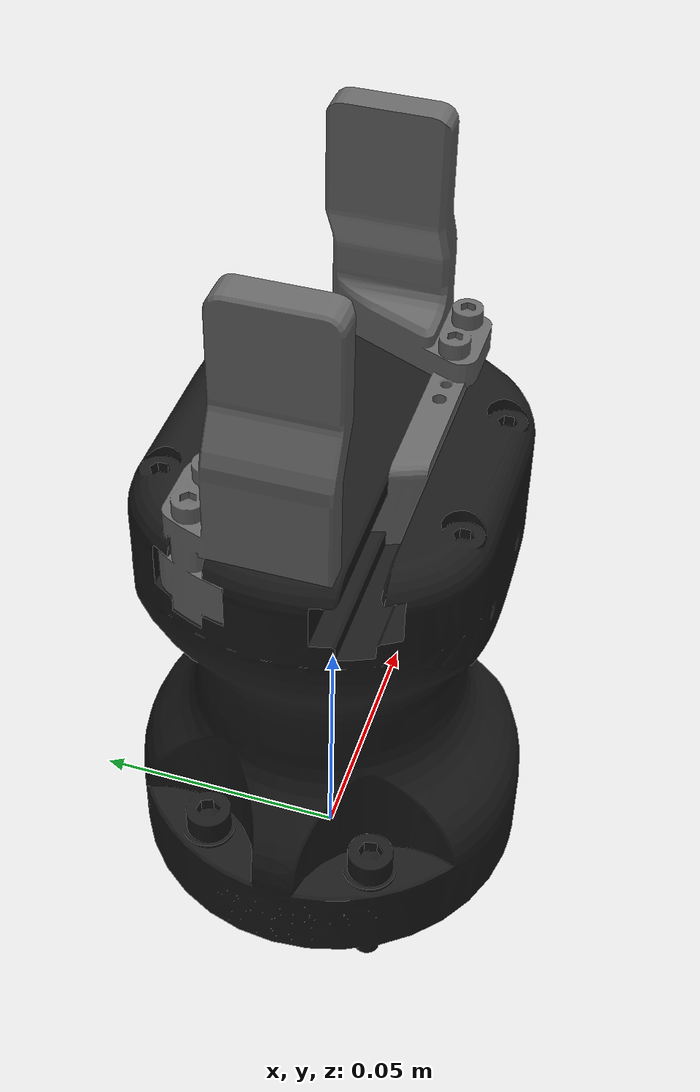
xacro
<?xml version="1.0"?>
<robot xmlns:xacro="http://ros.org/wiki/xacro"
       name="robotiq_hande_gripper" >

  <gazebo>
    <plugin name="gazebo_ros_control" filename="libgazebo_ros_control.so">
    </plugin>

  </gazebo>

  <!-- robotiq_hande_gripper -->
  <xacro:include filename="$(find robotiq_description)/urdf/robotiq_hande_gripper.urdf.xacro" />

  <link name="gripper_root_link">
    <visual>
      <origin xyz="0 0 0.005" rpy="0 0 0"/>
      <geometry>
        <box size="0.01 0.01 0.01"/>
      </geometry>
    </visual>
    <collision>
      <origin xyz="0 0 0.005" rpy="0 0 0"/>
      <geometry>
        <box size="0.01 0.01 0.01"/>
      </geometry>
    </collision>
    <inertial>
      <mass value="0.01" />
      <origin xyz="0.0 0.0 0.0" />
      <inertia ixx = "0.000001" ixy = "0.000000" ixz = "0.000000"
           iyx = "0.000000" iyy = "0.000001" iyz = "0.000000"
           izx = "0.000000" izy = "0.000000" izz = "0.000001" />
    </inertial>
  </link>

  <link name="world" />

  <joint name="world_joint" type="fixed">
    <parent link="world" />
    <child link = "gripper_root_link" />
    <origin xyz="0.0 0.0 0.0" rpy="0.0 0.0 0.0" />
  </joint>

  <!-- gripper -->
  <xacro:robotiq_hande_gripper prefix="" parent="gripper_root_link" >
    <origin xyz="0.0 0 0.005" rpy="0 0 0"/>
  </xacro:robotiq_hande_gripper>

</robot>

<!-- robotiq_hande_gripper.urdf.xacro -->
<robot xmlns:xacro="http://ros.org/wiki/xacro">

  <!--
  Author: Cristian Beltran
-->

  <xacro:include filename="$(find robotiq_description)/urdf/robotiq_hande_gripper.transmission.xacro" />

  <xacro:macro name="robotiq_hande_gripper" params="prefix parent *origin">

    <joint name="${prefix}robotiq_hande_base_joint" type="fixed">
      <parent link="${parent}"/>
      <child link="${prefix}hand_e_link"/>
      <xacro:insert_block name="origin"/>
    </joint>

    <link name="${prefix}hand_e_link">
      <inertial>
        <origin rpy="0 0 0" xyz="0 0 0.04607"/>
        <mass value="0.86387"/>
        <inertia ixx="1017560E-9" ixy="0" ixz="2235E-9" iyy="1028041E-9" iyz="0" izz="489810E-9"/>
      </inertial>
      <visual>
        <origin rpy="0 0 0" xyz="0 0 0"/>
        <geometry>
          <mesh filename="package://robotiq_description/meshes/hande/hand-e.dae" scale="1.0 1.0 1.0"/>
        </geometry>
        <material name="Dark">
          <color rgba=".1 0.1 0.1 1.0"/>
        </material>
      </visual>
      <collision>
        <origin rpy="0 0 0" xyz="0 0 0"/>
        <geometry>
          <mesh filename="package://robotiq_description/meshes/hande/hand-e-collision.dae" scale="1.0 1.0 1.0"/>
        </geometry>
      </collision>
    </link>
    <link name="${prefix}hande_left_finger">
      <inertial>
        <origin rpy="0 0 0" xyz="0.02262 -0.00759 0.00738"/>
        <mass value="0.03804"/>
        <inertia ixx="13567E-9" ixy="1849E-9" ixz="3622E-9" iyy="15784E-9" iyz="3616E-9" izz="7478E-9"/>
      </inertial>
      <visual>
        <origin rpy="0 0 0" xyz="0 0 0"/>
        <geometry>
          <mesh filename="package://robotiq_description/meshes/hande/finger_1.dae" scale="1.0 1.0 1.0"/>
        </geometry>
        <material name="DarkGray">
          <color rgba=".4 0.4 0.4 1.0"/>
        </material>
      </visual>
      <collision>
        <origin rpy="0 0 0" xyz="0 0 0"/>
        <geometry>
          <mesh filename="package://robotiq_description/meshes/hande/finger_1-collision.dae" scale="1.0 1.0 1.0"/>
        </geometry>
      </collision>
    </link>
    <link name="${prefix}hande_right_finger">
      <inertial>
        <origin rpy="0 0 0" xyz="-0.02262 0.00759 0.00738"/>
        <mass value="0.03804"/>
        <inertia ixx="13567E-9" ixy="1849E-9" ixz="-3622E-9" iyy="15784E-9" iyz="-3616E-9" izz="7478E-9"/>
      </inertial>
      <visual>
        <origin rpy="0 0 0" xyz="0 0 0"/>
        <geometry>
          <mesh filename="package://robotiq_description/meshes/hande/finger_2.dae" scale="1.0 1.0 1.0"/>
        </geometry>
        <material name="DarkGray">
          <color rgba=".4 0.4 0.4 1.0"/>
        </material>
      </visual>
      <collision>
        <origin rpy="0 0 0" xyz="0 0 0"/>
        <geometry>
          <mesh filename="package://robotiq_description/meshes/hande/finger_2-collision.dae" scale="1.0 1.0 1.0"/>
        </geometry>
      </collision>
    </link>

    <gazebo reference="${prefix}hand_e_link">
      <material>Gazebo/FlatBlack</material>
    </gazebo>
    <gazebo reference="${prefix}hande_right_finger">
      <material>Gazebo/Grey</material>
    </gazebo>
    <gazebo reference="${prefix}hande_left_finger">
      <material>Gazebo/Grey</material>
    </gazebo>
    <joint name="${prefix}hande_left_finger_joint" type="prismatic">
      <origin rpy="0 0 0" xyz="0 0 0.099"/>
      <parent link="${prefix}hand_e_link"/>
      <child link="${prefix}hande_left_finger"/>
      <axis xyz="-1 0 0"/>
      <limit effort="130" lower="0" upper="0.025" velocity="0.15"/>
    </joint>
    <joint name="${prefix}hande_right_finger_joint" type="prismatic">
      <origin rpy="0 0 0" xyz="0 0 0.099"/>
      <parent link="${prefix}hand_e_link"/>
      <child link="${prefix}hande_right_finger"/>
      <axis xyz="1 0 0"/>
      <limit effort="130" lower="0" upper="0.025" velocity="0.15"/>
      <mimic joint="${prefix}hande_left_finger_joint" multiplier="1" offset="0"/>
    </joint>

      <!-- Improve grasping physics -->
      <gazebo reference="${prefix}hande_left_finger">
        <kp>1000000.0</kp>
        <kd>1.0</kd>
        <mu1>1.0</mu1>
        <mu2>1.0</mu2>
        <minDepth>0.001</minDepth>
      </gazebo>
      <gazebo reference="${prefix}hande_right_finger">
        <kp>1000000.0</kp>
        <kd>1.0</kd>
        <mu1>1.0</mu1>
        <mu2>1.0</mu2>
        <minDepth>0.001</minDepth>
      </gazebo>

    <xacro:robotiq_hande_gripper_transmission prefix="${prefix}" />

  </xacro:macro>
</robot>
